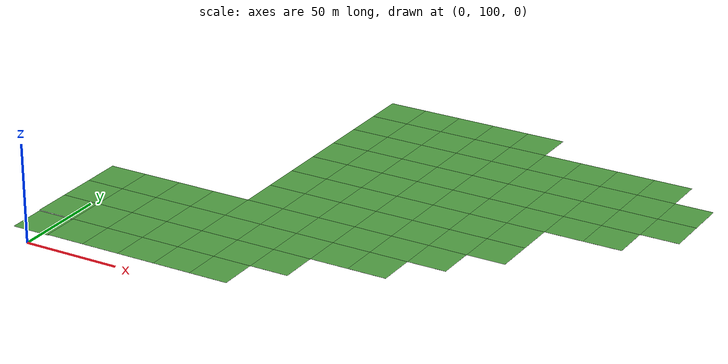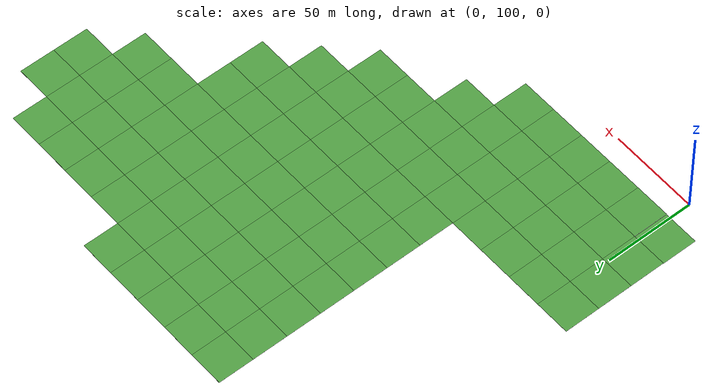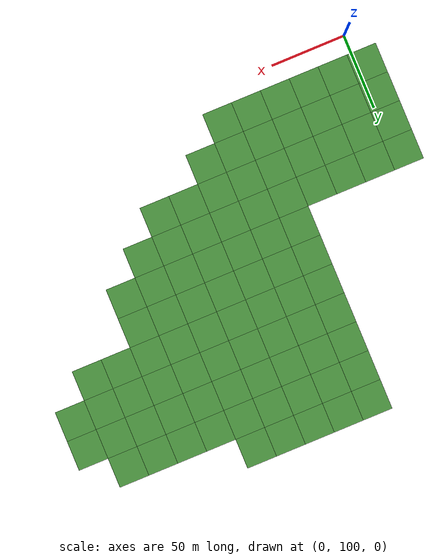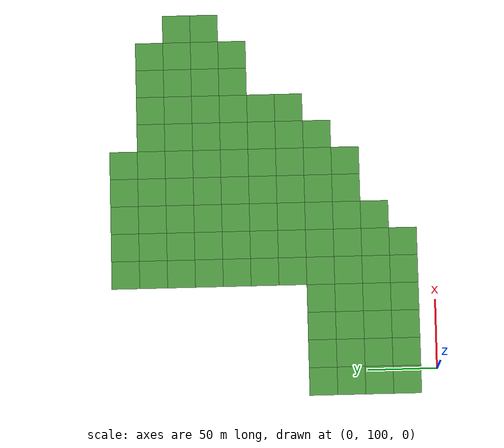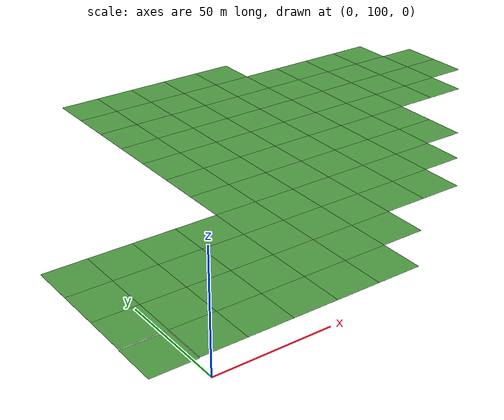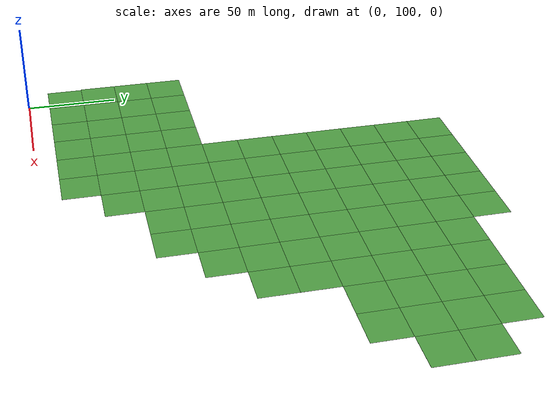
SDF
<sdf version="1.6">
 <world name="default">
  <model name="grass_plane_3">
   <static>1</static>
   <link name="link">
    <collision name="collision">
     <geometry><plane><normal>0 0 1</normal><size>500 500</size></plane></geometry>
     <surface><friction><ode><mu>0.5</mu><mu2>0.5</mu2></ode></friction></surface>
    </collision>
    <visual name="visual_0">
     <pose>-40 -40 0 0 -0 0</pose>
     <cast_shadows>0</cast_shadows>
     <geometry><plane><normal>0 0 1</normal><size>20 20</size></plane></geometry>
     <material>
      <script>
       <uri>model://grass_plane/materials/scripts</uri>
       <uri>model://grass_plane/materials/textures</uri>
       <name>vrc/grass</name>
      </script>
     </material>
    </visual>
    <visual name="visual_1">
     <pose>-20 -40 0 0 -0 0</pose>
     <cast_shadows>0</cast_shadows>
     <geometry><plane><normal>0 0 1</normal><size>20 20</size></plane></geometry>
     <material>
      <script>
       <uri>model://grass_plane/materials/scripts</uri>
       <uri>model://grass_plane/materials/textures</uri>
       <name>vrc/grass</name>
      </script>
     </material>
    </visual>
    <visual name="visual_2">
     <pose>0 -40 0 0 -0 0</pose>
     <cast_shadows>0</cast_shadows>
     <geometry><plane><normal>0 0 1</normal><size>20 20</size></plane></geometry>
     <material>
      <script>
       <uri>model://grass_plane/materials/scripts</uri>
       <uri>model://grass_plane/materials/textures</uri>
       <name>vrc/grass</name>
      </script>
     </material>
    </visual>
    <visual name="visual_3">
     <pose>20 -40 0 0 -0 0</pose>
     <cast_shadows>0</cast_shadows>
     <geometry><plane><normal>0 0 1</normal><size>20 20</size></plane></geometry>
     <material>
      <script>
       <uri>model://grass_plane/materials/scripts</uri>
       <uri>model://grass_plane/materials/textures</uri>
       <name>vrc/grass</name>
      </script>
     </material>
    </visual>
    <visual name="visual_4">
     <pose>40 -40 0 0 -0 0</pose>
     <cast_shadows>0</cast_shadows>
     <geometry><plane><normal>0 0 1</normal><size>20 20</size></plane></geometry>
     <material>
      <script>
       <uri>model://grass_plane/materials/scripts</uri>
       <uri>model://grass_plane/materials/textures</uri>
       <name>vrc/grass</name>
      </script>
     </material>
    </visual>
    <visual name="visual_5">
     <pose>60 -40 0 0 -0 0</pose>
     <cast_shadows>0</cast_shadows>
     <geometry><plane><normal>0 0 1</normal><size>20 20</size></plane></geometry>
     <material>
      <script>
       <uri>model://grass_plane/materials/scripts</uri>
       <uri>model://grass_plane/materials/textures</uri>
       <name>vrc/grass</name>
      </script>
     </material>
    </visual>
    <visual name="visual_6">
     <pose>-40 -20 0 0 -0 0</pose>
     <cast_shadows>0</cast_shadows>
     <geometry><plane><normal>0 0 1</normal><size>20 20</size></plane></geometry>
     <material>
      <script>
       <uri>model://grass_plane/materials/scripts</uri>
       <uri>model://grass_plane/materials/textures</uri>
       <name>vrc/grass</name>
      </script>
     </material>
    </visual>
    <visual name="visual_7">
     <pose>-20 -20 0 0 -0 0</pose>
     <cast_shadows>0</cast_shadows>
     <geometry><plane><normal>0 0 1</normal><size>20 20</size></plane></geometry>
     <material>
      <script>
       <uri>model://grass_plane/materials/scripts</uri>
       <uri>model://grass_plane/materials/textures</uri>
       <name>vrc/grass</name>
      </script>
     </material>
    </visual>
    <visual name="visual_8">
     <pose>0 -20 0 0 -0 0</pose>
     <cast_shadows>0</cast_shadows>
     <geometry><plane><normal>0 0 1</normal><size>20 20</size></plane></geometry>
     <material>
      <script>
       <uri>model://grass_plane/materials/scripts</uri>
       <uri>model://grass_plane/materials/textures</uri>
       <name>vrc/grass</name>
      </script>
     </material>
    </visual>
    <visual name="visual_9">
     <pose>20 -20 0 0 -0 0</pose>
     <cast_shadows>0</cast_shadows>
     <geometry><plane><normal>0 0 1</normal><size>20 20</size></plane></geometry>
     <material>
      <script>
       <uri>model://grass_plane/materials/scripts</uri>
       <uri>model://grass_plane/materials/textures</uri>
       <name>vrc/grass</name>
      </script>
     </material>
    </visual>
    <visual name="visual_10">
     <pose>40 -20 0 0 -0 0</pose>
     <cast_shadows>0</cast_shadows>
     <geometry><plane><normal>0 0 1</normal><size>20 20</size></plane></geometry>
     <material>
      <script>
       <uri>model://grass_plane/materials/scripts</uri>
       <uri>model://grass_plane/materials/textures</uri>
       <name>vrc/grass</name>
      </script>
     </material>
    </visual>
    <visual name="visual_11">
     <pose>60 -20 0 0 -0 0</pose>
     <cast_shadows>0</cast_shadows>
     <geometry><plane><normal>0 0 1</normal><size>20 20</size></plane></geometry>
     <material>
      <script>
       <uri>model://grass_plane/materials/scripts</uri>
       <uri>model://grass_plane/materials/textures</uri>
       <name>vrc/grass</name>
      </script>
     </material>
    </visual>
    <visual name="visual_12">
     <pose>80 -20 0 0 -0 0</pose>
     <cast_shadows>0</cast_shadows>
     <geometry><plane><normal>0 0 1</normal><size>20 20</size></plane></geometry>
     <material>
      <script>
       <uri>model://grass_plane/materials/scripts</uri>
       <uri>model://grass_plane/materials/textures</uri>
       <name>vrc/grass</name>
      </script>
     </material>
    </visual>
    <visual name="visual_13">
     <pose>-40 0 0 0 -0 0</pose>
     <cast_shadows>0</cast_shadows>
     <geometry><plane><normal>0 0 1</normal><size>20 20</size></plane></geometry>
     <material>
      <script>
       <uri>model://grass_plane/materials/scripts</uri>
       <uri>model://grass_plane/materials/textures</uri>
       <name>vrc/grass</name>
      </script>
     </material>
    </visual>
    <visual name="visual_14">
     <pose>-20 0 0 0 -0 0</pose>
     <cast_shadows>0</cast_shadows>
     <geometry><plane><normal>0 0 1</normal><size>20 20</size></plane></geometry>
     <material>
      <script>
       <uri>model://grass_plane/materials/scripts</uri>
       <uri>model://grass_plane/materials/textures</uri>
       <name>vrc/grass</name>
      </script>
     </material>
    </visual>
    <visual name="visual_15">
     <cast_shadows>0</cast_shadows>
     <geometry><plane><normal>0 0 1</normal><size>20 20</size></plane></geometry>
     <material>
      <script>
       <uri>model://grass_plane/materials/scripts</uri>
       <uri>model://grass_plane/materials/textures</uri>
       <name>vrc/grass</name>
      </script>
     </material>
    </visual>
    <visual name="visual_16">
     <pose>20 0 0 0 -0 0</pose>
     <cast_shadows>0</cast_shadows>
     <geometry><plane><normal>0 0 1</normal><size>20 20</size></plane></geometry>
     <material>
      <script>
       <uri>model://grass_plane/materials/scripts</uri>
       <uri>model://grass_plane/materials/textures</uri>
       <name>vrc/grass</name>
      </script>
     </material>
    </visual>
    <visual name="visual_17">
     <pose>40 0 0 0 -0 0</pose>
     <cast_shadows>0</cast_shadows>
     <geometry><plane><normal>0 0 1</normal><size>20 20</size></plane></geometry>
     <material>
      <script>
       <uri>model://grass_plane/materials/scripts</uri>
       <uri>model://grass_plane/materials/textures</uri>
       <name>vrc/grass</name>
      </script>
     </material>
    </visual>
    <visual name="visual_18">
     <pose>60 0 0 0 -0 0</pose>
     <cast_shadows>0</cast_shadows>
     <geometry><plane><normal>0 0 1</normal><size>20 20</size></plane></geometry>
     <material>
      <script>
       <uri>model://grass_plane/materials/scripts</uri>
       <uri>model://grass_plane/materials/textures</uri>
       <name>vrc/grass</name>
      </script>
     </material>
    </visual>
    <visual name="visual_19">
     <pose>80 0 0 0 -0 0</pose>
     <cast_shadows>0</cast_shadows>
     <geometry><plane><normal>0 0 1</normal><size>20 20</size></plane></geometry>
     <material>
      <script>
       <uri>model://grass_plane/materials/scripts</uri>
       <uri>model://grass_plane/materials/textures</uri>
       <name>vrc/grass</name>
      </script>
     </material>
    </visual>
    <visual name="visual_20">
     <pose>100 0 0 0 -0 0</pose>
     <cast_shadows>0</cast_shadows>
     <geometry><plane><normal>0 0 1</normal><size>20 20</size></plane></geometry>
     <material>
      <script>
       <uri>model://grass_plane/materials/scripts</uri>
       <uri>model://grass_plane/materials/textures</uri>
       <name>vrc/grass</name>
      </script>
     </material>
    </visual>
    <visual name="visual_21">
     <pose>120 0 0 0 -0 0</pose>
     <cast_shadows>0</cast_shadows>
     <geometry><plane><normal>0 0 1</normal><size>20 20</size></plane></geometry>
     <material>
      <script>
       <uri>model://grass_plane/materials/scripts</uri>
       <uri>model://grass_plane/materials/textures</uri>
       <name>vrc/grass</name>
      </script>
     </material>
    </visual>
    <visual name="visual_22">
     <pose>-40 20 0 0 -0 0</pose>
     <cast_shadows>0</cast_shadows>
     <geometry><plane><normal>0 0 1</normal><size>20 20</size></plane></geometry>
     <material>
      <script>
       <uri>model://grass_plane/materials/scripts</uri>
       <uri>model://grass_plane/materials/textures</uri>
       <name>vrc/grass</name>
      </script>
     </material>
    </visual>
    <visual name="visual_23">
     <pose>-20 20 0 0 -0 0</pose>
     <cast_shadows>0</cast_shadows>
     <geometry><plane><normal>0 0 1</normal><size>20 20</size></plane></geometry>
     <material>
      <script>
       <uri>model://grass_plane/materials/scripts</uri>
       <uri>model://grass_plane/materials/textures</uri>
       <name>vrc/grass</name>
      </script>
     </material>
    </visual>
    <visual name="visual_24">
     <pose>0 20 0 0 -0 0</pose>
     <cast_shadows>0</cast_shadows>
     <geometry><plane><normal>0 0 1</normal><size>20 20</size></plane></geometry>
     <material>
      <script>
       <uri>model://grass_plane/materials/scripts</uri>
       <uri>model://grass_plane/materials/textures</uri>
       <name>vrc/grass</name>
      </script>
     </material>
    </visual>
    <visual name="visual_25">
     <pose>20 20 0 0 -0 0</pose>
     <cast_shadows>0</cast_shadows>
     <geometry><plane><normal>0 0 1</normal><size>20 20</size></plane></geometry>
     <material>
      <script>
       <uri>model://grass_plane/materials/scripts</uri>
       <uri>model://grass_plane/materials/textures</uri>
       <name>vrc/grass</name>
      </script>
     </material>
    </visual>
    <visual name="visual_26">
     <pose>40 20 0 0 -0 0</pose>
     <cast_shadows>0</cast_shadows>
     <geometry><plane><normal>0 0 1</normal><size>20 20</size></plane></geometry>
     <material>
      <script>
       <uri>model://grass_plane/materials/scripts</uri>
       <uri>model://grass_plane/materials/textures</uri>
       <name>vrc/grass</name>
      </script>
     </material>
    </visual>
    <visual name="visual_27">
     <pose>60 20 0 0 -0 0</pose>
     <cast_shadows>0</cast_shadows>
     <geometry><plane><normal>0 0 1</normal><size>20 20</size></plane></geometry>
     <material>
      <script>
       <uri>model://grass_plane/materials/scripts</uri>
       <uri>model://grass_plane/materials/textures</uri>
       <name>vrc/grass</name>
      </script>
     </material>
    </visual>
    <visual name="visual_28">
     <pose>80 20 0 0 -0 0</pose>
     <cast_shadows>0</cast_shadows>
     <geometry><plane><normal>0 0 1</normal><size>20 20</size></plane></geometry>
     <material>
      <script>
       <uri>model://grass_plane/materials/scripts</uri>
       <uri>model://grass_plane/materials/textures</uri>
       <name>vrc/grass</name>
      </script>
     </material>
    </visual>
    <visual name="visual_29">
     <pose>100 20 0 0 -0 0</pose>
     <cast_shadows>0</cast_shadows>
     <geometry><plane><normal>0 0 1</normal><size>20 20</size></plane></geometry>
     <material>
      <script>
       <uri>model://grass_plane/materials/scripts</uri>
       <uri>model://grass_plane/materials/textures</uri>
       <name>vrc/grass</name>
      </script>
     </material>
    </visual>
    <visual name="visual_30">
     <pose>120 20 0 0 -0 0</pose>
     <cast_shadows>0</cast_shadows>
     <geometry><plane><normal>0 0 1</normal><size>20 20</size></plane></geometry>
     <material>
      <script>
       <uri>model://grass_plane/materials/scripts</uri>
       <uri>model://grass_plane/materials/textures</uri>
       <name>vrc/grass</name>
      </script>
     </material>
    </visual>
    <visual name="visual_31">
     <pose>140 20 0 0 -0 0</pose>
     <cast_shadows>0</cast_shadows>
     <geometry><plane><normal>0 0 1</normal><size>20 20</size></plane></geometry>
     <material>
      <script>
       <uri>model://grass_plane/materials/scripts</uri>
       <uri>model://grass_plane/materials/textures</uri>
       <name>vrc/grass</name>
      </script>
     </material>
    </visual>
    <visual name="visual_32">
     <pose>40 40 0 0 -0 0</pose>
     <cast_shadows>0</cast_shadows>
     <geometry><plane><normal>0 0 1</normal><size>20 20</size></plane></geometry>
     <material>
      <script>
       <uri>model://grass_plane/materials/scripts</uri>
       <uri>model://grass_plane/materials/textures</uri>
       <name>vrc/grass</name>
      </script>
     </material>
    </visual>
    <visual name="visual_33">
     <pose>60 40 0 0 -0 0</pose>
     <cast_shadows>0</cast_shadows>
     <geometry><plane><normal>0 0 1</normal><size>20 20</size></plane></geometry>
     <material>
      <script>
       <uri>model://grass_plane/materials/scripts</uri>
       <uri>model://grass_plane/materials/textures</uri>
       <name>vrc/grass</name>
      </script>
     </material>
    </visual>
    <visual name="visual_34">
     <pose>80 40 0 0 -0 0</pose>
     <cast_shadows>0</cast_shadows>
     <geometry><plane><normal>0 0 1</normal><size>20 20</size></plane></geometry>
     <material>
      <script>
       <uri>model://grass_plane/materials/scripts</uri>
       <uri>model://grass_plane/materials/textures</uri>
       <name>vrc/grass</name>
      </script>
     </material>
    </visual>
    <visual name="visual_35">
     <pose>100 40 0 0 -0 0</pose>
     <cast_shadows>0</cast_shadows>
     <geometry><plane><normal>0 0 1</normal><size>20 20</size></plane></geometry>
     <material>
      <script>
       <uri>model://grass_plane/materials/scripts</uri>
       <uri>model://grass_plane/materials/textures</uri>
       <name>vrc/grass</name>
      </script>
     </material>
    </visual>
    <visual name="visual_36">
     <pose>120 40 0 0 -0 0</pose>
     <cast_shadows>0</cast_shadows>
     <geometry><plane><normal>0 0 1</normal><size>20 20</size></plane></geometry>
     <material>
      <script>
       <uri>model://grass_plane/materials/scripts</uri>
       <uri>model://grass_plane/materials/textures</uri>
       <name>vrc/grass</name>
      </script>
     </material>
    </visual>
    <visual name="visual_37">
     <pose>140 40 0 0 -0 0</pose>
     <cast_shadows>0</cast_shadows>
     <geometry><plane><normal>0 0 1</normal><size>20 20</size></plane></geometry>
     <material>
      <script>
       <uri>model://grass_plane/materials/scripts</uri>
       <uri>model://grass_plane/materials/textures</uri>
       <name>vrc/grass</name>
      </script>
     </material>
    </visual>
    <visual name="visual_38">
     <pose>160 40 0 0 -0 0</pose>
     <cast_shadows>0</cast_shadows>
     <geometry><plane><normal>0 0 1</normal><size>20 20</size></plane></geometry>
     <material>
      <script>
       <uri>model://grass_plane/materials/scripts</uri>
       <uri>model://grass_plane/materials/textures</uri>
       <name>vrc/grass</name>
      </script>
     </material>
    </visual>
    <visual name="visual_39">
     <pose>40 60 0 0 -0 0</pose>
     <cast_shadows>0</cast_shadows>
     <geometry><plane><normal>0 0 1</normal><size>20 20</size></plane></geometry>
     <material>
      <script>
       <uri>model://grass_plane/materials/scripts</uri>
       <uri>model://grass_plane/materials/textures</uri>
       <name>vrc/grass</name>
      </script>
     </material>
    </visual>
    <visual name="visual_40">
     <pose>60 60 0 0 -0 0</pose>
     <cast_shadows>0</cast_shadows>
     <geometry><plane><normal>0 0 1</normal><size>20 20</size></plane></geometry>
     <material>
      <script>
       <uri>model://grass_plane/materials/scripts</uri>
       <uri>model://grass_plane/materials/textures</uri>
       <name>vrc/grass</name>
      </script>
     </material>
    </visual>
    <visual name="visual_41">
     <pose>80 60 0 0 -0 0</pose>
     <cast_shadows>0</cast_shadows>
     <geometry><plane><normal>0 0 1</normal><size>20 20</size></plane></geometry>
     <material>
      <script>
       <uri>model://grass_plane/materials/scripts</uri>
       <uri>model://grass_plane/materials/textures</uri>
       <name>vrc/grass</name>
      </script>
     </material>
    </visual>
    <visual name="visual_42">
     <pose>100 60 0 0 -0 0</pose>
     <cast_shadows>0</cast_shadows>
     <geometry><plane><normal>0 0 1</normal><size>20 20</size></plane></geometry>
     <material>
      <script>
       <uri>model://grass_plane/materials/scripts</uri>
       <uri>model://grass_plane/materials/textures</uri>
       <name>vrc/grass</name>
      </script>
     </material>
    </visual>
    <visual name="visual_43">
     <pose>120 60 0 0 -0 0</pose>
     <cast_shadows>0</cast_shadows>
     <geometry><plane><normal>0 0 1</normal><size>20 20</size></plane></geometry>
     <material>
      <script>
       <uri>model://grass_plane/materials/scripts</uri>
       <uri>model://grass_plane/materials/textures</uri>
       <name>vrc/grass</name>
      </script>
     </material>
    </visual>
    <visual name="visual_44">
     <pose>140 60 0 0 -0 0</pose>
     <cast_shadows>0</cast_shadows>
     <geometry><plane><normal>0 0 1</normal><size>20 20</size></plane></geometry>
     <material>
      <script>
       <uri>model://grass_plane/materials/scripts</uri>
       <uri>model://grass_plane/materials/textures</uri>
       <name>vrc/grass</name>
      </script>
     </material>
    </visual>
    <visual name="visual_45">
     <pose>160 60 0 0 -0 0</pose>
     <cast_shadows>0</cast_shadows>
     <geometry><plane><normal>0 0 1</normal><size>20 20</size></plane></geometry>
     <material>
      <script>
       <uri>model://grass_plane/materials/scripts</uri>
       <uri>model://grass_plane/materials/textures</uri>
       <name>vrc/grass</name>
      </script>
     </material>
    </visual>
    <visual name="visual_46">
     <pose>40 80 0 0 -0 0</pose>
     <cast_shadows>0</cast_shadows>
     <geometry><plane><normal>0 0 1</normal><size>20 20</size></plane></geometry>
     <material>
      <script>
       <uri>model://grass_plane/materials/scripts</uri>
       <uri>model://grass_plane/materials/textures</uri>
       <name>vrc/grass</name>
      </script>
     </material>
    </visual>
    <visual name="visual_47">
     <pose>60 80 0 0 -0 0</pose>
     <cast_shadows>0</cast_shadows>
     <geometry><plane><normal>0 0 1</normal><size>20 20</size></plane></geometry>
     <material>
      <script>
       <uri>model://grass_plane/materials/scripts</uri>
       <uri>model://grass_plane/materials/textures</uri>
       <name>vrc/grass</name>
      </script>
     </material>
    </visual>
    <visual name="visual_48">
     <pose>80 80 0 0 -0 0</pose>
     <cast_shadows>0</cast_shadows>
     <geometry><plane><normal>0 0 1</normal><size>20 20</size></plane></geometry>
     <material>
      <script>
       <uri>model://grass_plane/materials/scripts</uri>
       <uri>model://grass_plane/materials/textures</uri>
       <name>vrc/grass</name>
      </script>
     </material>
    </visual>
    <visual name="visual_49">
     <pose>100 80 0 0 -0 0</pose>
     <cast_shadows>0</cast_shadows>
     <geometry><plane><normal>0 0 1</normal><size>20 20</size></plane></geometry>
     <material>
      <script>
       <uri>model://grass_plane/materials/scripts</uri>
       <uri>model://grass_plane/materials/textures</uri>
       <name>vrc/grass</name>
      </script>
     </material>
    </visual>
    <visual name="visual_50">
     <pose>120 80 0 0 -0 0</pose>
     <cast_shadows>0</cast_shadows>
     <geometry><plane><normal>0 0 1</normal><size>20 20</size></plane></geometry>
     <material>
      <script>
       <uri>model://grass_plane/materials/scripts</uri>
       <uri>model://grass_plane/materials/textures</uri>
       <name>vrc/grass</name>
      </script>
     </material>
    </visual>
    <visual name="visual_51">
     <pose>140 80 0 0 -0 0</pose>
     <cast_shadows>0</cast_shadows>
     <geometry><plane><normal>0 0 1</normal><size>20 20</size></plane></geometry>
     <material>
      <script>
       <uri>model://grass_plane/materials/scripts</uri>
       <uri>model://grass_plane/materials/textures</uri>
       <name>vrc/grass</name>
      </script>
     </material>
    </visual>
    <visual name="visual_52">
     <pose>160 80 0 0 -0 0</pose>
     <cast_shadows>0</cast_shadows>
     <geometry><plane><normal>0 0 1</normal><size>20 20</size></plane></geometry>
     <material>
      <script>
       <uri>model://grass_plane/materials/scripts</uri>
       <uri>model://grass_plane/materials/textures</uri>
       <name>vrc/grass</name>
      </script>
     </material>
    </visual>
    <visual name="visual_53">
     <pose>180 80 0 0 -0 0</pose>
     <cast_shadows>0</cast_shadows>
     <geometry><plane><normal>0 0 1</normal><size>20 20</size></plane></geometry>
     <material>
      <script>
       <uri>model://grass_plane/materials/scripts</uri>
       <uri>model://grass_plane/materials/textures</uri>
       <name>vrc/grass</name>
      </script>
     </material>
    </visual>
    <visual name="visual_54">
     <pose>200 80 0 0 -0 0</pose>
     <cast_shadows>0</cast_shadows>
     <geometry><plane><normal>0 0 1</normal><size>20 20</size></plane></geometry>
     <material>
      <script>
       <uri>model://grass_plane/materials/scripts</uri>
       <uri>model://grass_plane/materials/textures</uri>
       <name>vrc/grass</name>
      </script>
     </material>
    </visual>
    <visual name="visual_55">
     <pose>40 100 0 0 -0 0</pose>
     <cast_shadows>0</cast_shadows>
     <geometry><plane><normal>0 0 1</normal><size>20 20</size></plane></geometry>
     <material>
      <script>
       <uri>model://grass_plane/materials/scripts</uri>
       <uri>model://grass_plane/materials/textures</uri>
       <name>vrc/grass</name>
      </script>
     </material>
    </visual>
    <visual name="visual_56">
     <pose>60 100 0 0 -0 0</pose>
     <cast_shadows>0</cast_shadows>
     <geometry><plane><normal>0 0 1</normal><size>20 20</size></plane></geometry>
     <material>
      <script>
       <uri>model://grass_plane/materials/scripts</uri>
       <uri>model://grass_plane/materials/textures</uri>
       <name>vrc/grass</name>
      </script>
     </material>
    </visual>
    <visual name="visual_57">
     <pose>80 100 0 0 -0 0</pose>
     <cast_shadows>0</cast_shadows>
     <geometry><plane><normal>0 0 1</normal><size>20 20</size></plane></geometry>
     <material>
      <script>
       <uri>model://grass_plane/materials/scripts</uri>
       <uri>model://grass_plane/materials/textures</uri>
       <name>vrc/grass</name>
      </script>
     </material>
    </visual>
    <visual name="visual_58">
     <pose>100 100 0 0 -0 0</pose>
     <cast_shadows>0</cast_shadows>
     <geometry><plane><normal>0 0 1</normal><size>20 20</size></plane></geometry>
     <material>
      <script>
       <uri>model://grass_plane/materials/scripts</uri>
       <uri>model://grass_plane/materials/textures</uri>
       <name>vrc/grass</name>
      </script>
     </material>
    </visual>
    <visual name="visual_59">
     <pose>120 100 0 0 -0 0</pose>
     <cast_shadows>0</cast_shadows>
     <geometry><plane><normal>0 0 1</normal><size>20 20</size></plane></geometry>
     <material>
      <script>
       <uri>model://grass_plane/materials/scripts</uri>
       <uri>model://grass_plane/materials/textures</uri>
       <name>vrc/grass</name>
      </script>
     </material>
    </visual>
    <visual name="visual_60">
     <pose>140 100 0 0 -0 0</pose>
     <cast_shadows>0</cast_shadows>
     <geometry><plane><normal>0 0 1</normal><size>20 20</size></plane></geometry>
     <material>
      <script>
       <uri>model://grass_plane/materials/scripts</uri>
       <uri>model://grass_plane/materials/textures</uri>
       <name>vrc/grass</name>
      </script>
     </material>
    </visual>
    <visual name="visual_61">
     <pose>160 100 0 0 -0 0</pose>
     <cast_shadows>0</cast_shadows>
     <geometry><plane><normal>0 0 1</normal><size>20 20</size></plane></geometry>
     <material>
      <script>
       <uri>model://grass_plane/materials/scripts</uri>
       <uri>model://grass_plane/materials/textures</uri>
       <name>vrc/grass</name>
      </script>
     </material>
    </visual>
    <visual name="visual_62">
     <pose>180 100 0 0 -0 0</pose>
     <cast_shadows>0</cast_shadows>
     <geometry><plane><normal>0 0 1</normal><size>20 20</size></plane></geometry>
     <material>
      <script>
       <uri>model://grass_plane/materials/scripts</uri>
       <uri>model://grass_plane/materials/textures</uri>
       <name>vrc/grass</name>
      </script>
     </material>
    </visual>
    <visual name="visual_63">
     <pose>200 100 0 0 -0 0</pose>
     <cast_shadows>0</cast_shadows>
     <geometry><plane><normal>0 0 1</normal><size>20 20</size></plane></geometry>
     <material>
      <script>
       <uri>model://grass_plane/materials/scripts</uri>
       <uri>model://grass_plane/materials/textures</uri>
       <name>vrc/grass</name>
      </script>
     </material>
    </visual>
    <visual name="visual_63a">
     <pose>220 100 0 0 -0 0</pose>
     <cast_shadows>0</cast_shadows>
     <geometry><plane><normal>0 0 1</normal><size>20 20</size></plane></geometry>
     <material>
      <script>
       <uri>model://grass_plane/materials/scripts</uri>
       <uri>model://grass_plane/materials/textures</uri>
       <name>vrc/grass</name>
      </script>
     </material>
    </visual>
    <visual name="visual_64">
     <pose>40 120 0 0 -0 0</pose>
     <cast_shadows>0</cast_shadows>
     <geometry><plane><normal>0 0 1</normal><size>20 20</size></plane></geometry>
     <material>
      <script>
       <uri>model://grass_plane/materials/scripts</uri>
       <uri>model://grass_plane/materials/textures</uri>
       <name>vrc/grass</name>
      </script>
     </material>
    </visual>
    <visual name="visual_65">
     <pose>60 120 0 0 -0 0</pose>
     <cast_shadows>0</cast_shadows>
     <geometry><plane><normal>0 0 1</normal><size>20 20</size></plane></geometry>
     <material>
      <script>
       <uri>model://grass_plane/materials/scripts</uri>
       <uri>model://grass_plane/materials/textures</uri>
       <name>vrc/grass</name>
      </script>
     </material>
    </visual>
    <visual name="visual_66">
     <pose>80 120 0 0 -0 0</pose>
     <cast_shadows>0</cast_shadows>
     <geometry><plane><normal>0 0 1</normal><size>20 20</size></plane></geometry>
     <material>
      <script>
       <uri>model://grass_plane/materials/scripts</uri>
       <uri>model://grass_plane/materials/textures</uri>
       <name>vrc/grass</name>
      </script>
     </material>
    </visual>
    <visual name="visual_67">
     <pose>100 120 0 0 -0 0</pose>
     <cast_shadows>0</cast_shadows>
     <geometry><plane><normal>0 0 1</normal><size>20 20</size></plane></geometry>
     <material>
      <script>
       <uri>model://grass_plane/materials/scripts</uri>
       <uri>model://grass_plane/materials/textures</uri>
       <name>vrc/grass</name>
      </script>
     </material>
    </visual>
    <visual name="visual_68">
     <pose>120 120 0 0 -0 0</pose>
     <cast_shadows>0</cast_shadows>
     <geometry><plane><normal>0 0 1</normal><size>20 20</size></plane></geometry>
     <material>
      <script>
       <uri>model://grass_plane/materials/scripts</uri>
       <uri>model://grass_plane/materials/textures</uri>
       <name>vrc/grass</name>
      </script>
     </material>
    </visual>
    <visual name="visual_69">
     <pose>140 120 0 0 -0 0</pose>
     <cast_shadows>0</cast_shadows>
     <geometry><plane><normal>0 0 1</normal><size>20 20</size></plane></geometry>
     <material>
      <script>
       <uri>model://grass_plane/materials/scripts</uri>
       <uri>model://grass_plane/materials/textures</uri>
       <name>vrc/grass</name>
      </script>
     </material>
    </visual>
    <visual name="visual_70">
     <pose>160 120 0 0 -0 0</pose>
     <cast_shadows>0</cast_shadows>
     <geometry><plane><normal>0 0 1</normal><size>20 20</size></plane></geometry>
     <material>
      <script>
       <uri>model://grass_plane/materials/scripts</uri>
       <uri>model://grass_plane/materials/textures</uri>
       <name>vrc/grass</name>
      </script>
     </material>
    </visual>
    <visual name="visual_71">
     <pose>180 120 0 0 -0 0</pose>
     <cast_shadows>0</cast_shadows>
     <geometry><plane><normal>0 0 1</normal><size>20 20</size></plane></geometry>
     <material>
      <script>
       <uri>model://grass_plane/materials/scripts</uri>
       <uri>model://grass_plane/materials/textures</uri>
       <name>vrc/grass</name>
      </script>
     </material>
    </visual>
    <visual name="visual_72">
     <pose>200 120 0 0 -0 0</pose>
     <cast_shadows>0</cast_shadows>
     <geometry><plane><normal>0 0 1</normal><size>20 20</size></plane></geometry>
     <material>
      <script>
       <uri>model://grass_plane/materials/scripts</uri>
       <uri>model://grass_plane/materials/textures</uri>
       <name>vrc/grass</name>
      </script>
     </material>
    </visual>
    <visual name="visual_72a">
     <pose>220 120 0 0 -0 0</pose>
     <cast_shadows>0</cast_shadows>
     <geometry><plane><normal>0 0 1</normal><size>20 20</size></plane></geometry>
     <material>
      <script>
       <uri>model://grass_plane/materials/scripts</uri>
       <uri>model://grass_plane/materials/textures</uri>
       <name>vrc/grass</name>
      </script>
     </material>
    </visual>
    <visual name="visual_73">
     <pose>40 140 0 0 -0 0</pose>
     <cast_shadows>0</cast_shadows>
     <geometry><plane><normal>0 0 1</normal><size>20 20</size></plane></geometry>
     <material>
      <script>
       <uri>model://grass_plane/materials/scripts</uri>
       <uri>model://grass_plane/materials/textures</uri>
       <name>vrc/grass</name>
      </script>
     </material>
    </visual>
    <visual name="visual_74">
     <pose>60 140 0 0 -0 0</pose>
     <cast_shadows>0</cast_shadows>
     <geometry><plane><normal>0 0 1</normal><size>20 20</size></plane></geometry>
     <material>
      <script>
       <uri>model://grass_plane/materials/scripts</uri>
       <uri>model://grass_plane/materials/textures</uri>
       <name>vrc/grass</name>
      </script>
     </material>
    </visual>
    <visual name="visual_75">
     <pose>80 140 0 0 -0 0</pose>
     <cast_shadows>0</cast_shadows>
     <geometry><plane><normal>0 0 1</normal><size>20 20</size></plane></geometry>
     <material>
      <script>
       <uri>model://grass_plane/materials/scripts</uri>
       <uri>model://grass_plane/materials/textures</uri>
       <name>vrc/grass</name>
      </script>
     </material>
    </visual>
    <visual name="visual_76">
     <pose>100 140 0 0 -0 0</pose>
     <cast_shadows>0</cast_shadows>
     <geometry><plane><normal>0 0 1</normal><size>20 20</size></plane></geometry>
     <material>
      <script>
       <uri>model://grass_plane/materials/scripts</uri>
       <uri>model://grass_plane/materials/textures</uri>
       <name>vrc/grass</name>
      </script>
     </material>
    </visual>
    <visual name="visual_77">
     <pose>120 140 0 0 -0 0</pose>
     <cast_shadows>0</cast_shadows>
     <geometry><plane><normal>0 0 1</normal><size>20 20</size></plane></geometry>
     <material>
      <script>
       <uri>model://grass_plane/materials/scripts</uri>
       <uri>model://grass_plane/materials/textures</uri>
       <name>vrc/grass</name>
      </script>
     </material>
    </visual>
    <visual name="visual_78">
     <pose>140 140 0 0 -0 0</pose>
     <cast_shadows>0</cast_shadows>
     <geometry><plane><normal>0 0 1</normal><size>20 20</size></plane></geometry>
     <material>
      <script>
       <uri>model://grass_plane/materials/scripts</uri>
       <uri>model://grass_plane/materials/textures</uri>
       <name>vrc/grass</name>
      </script>
     </material>
    </visual>
    <visual name="visual_79">
     <pose>160 140 0 0 -0 0</pose>
     <cast_shadows>0</cast_shadows>
     <geometry><plane><normal>0 0 1</normal><size>20 20</size></plane></geometry>
     <material>
      <script>
       <uri>model://grass_plane/materials/scripts</uri>
       <uri>model://grass_plane/materials/textures</uri>
       <name>vrc/grass</name>
      </script>
     </material>
    </visual>
    <visual name="visual_80">
     <pose>180 140 0 0 -0 0</pose>
     <cast_shadows>0</cast_shadows>
     <geometry><plane><normal>0 0 1</normal><size>20 20</size></plane></geometry>
     <material>
      <script>
       <uri>model://grass_plane/materials/scripts</uri>
       <uri>model://grass_plane/materials/textures</uri>
       <name>vrc/grass</name>
      </script>
     </material>
    </visual>
    <visual name="visual_81">
     <pose>200 140 0 0 -0 0</pose>
     <cast_shadows>0</cast_shadows>
     <geometry><plane><normal>0 0 1</normal><size>20 20</size></plane></geometry>
     <material>
      <script>
       <uri>model://grass_plane/materials/scripts</uri>
       <uri>model://grass_plane/materials/textures</uri>
       <name>vrc/grass</name>
      </script>
     </material>
    </visual>
    <visual name="visual_82">
     <pose>40 160 0 0 -0 0</pose>
     <cast_shadows>0</cast_shadows>
     <geometry><plane><normal>0 0 1</normal><size>20 20</size></plane></geometry>
     <material>
      <script>
       <uri>model://grass_plane/materials/scripts</uri>
       <uri>model://grass_plane/materials/textures</uri>
       <name>vrc/grass</name>
      </script>
     </material>
    </visual>
    <visual name="visual_83">
     <pose>60 160 0 0 -0 0</pose>
     <cast_shadows>0</cast_shadows>
     <geometry><plane><normal>0 0 1</normal><size>20 20</size></plane></geometry>
     <material>
      <script>
       <uri>model://grass_plane/materials/scripts</uri>
       <uri>model://grass_plane/materials/textures</uri>
       <name>vrc/grass</name>
      </script>
     </material>
    </visual>
    <visual name="visual_84">
     <pose>80 160 0 0 -0 0</pose>
     <cast_shadows>0</cast_shadows>
     <geometry><plane><normal>0 0 1</normal><size>20 20</size></plane></geometry>
     <material>
      <script>
       <uri>model://grass_plane/materials/scripts</uri>
       <uri>model://grass_plane/materials/textures</uri>
       <name>vrc/grass</name>
      </script>
     </material>
    </visual>
    <visual name="visual_85">
     <pose>100 160 0 0 -0 0</pose>
     <cast_shadows>0</cast_shadows>
     <geometry><plane><normal>0 0 1</normal><size>20 20</size></plane></geometry>
     <material>
      <script>
       <uri>model://grass_plane/materials/scripts</uri>
       <uri>model://grass_plane/materials/textures</uri>
       <name>vrc/grass</name>
      </script>
     </material>
    </visual>
    <visual name="visual_86">
     <pose>120 160 0 0 -0 0</pose>
     <cast_shadows>0</cast_shadows>
     <geometry><plane><normal>0 0 1</normal><size>20 20</size></plane></geometry>
     <material>
      <script>
       <uri>model://grass_plane/materials/scripts</uri>
       <uri>model://grass_plane/materials/textures</uri>
       <name>vrc/grass</name>
      </script>
     </material>
    </visual>
   </link>
   <pose>32.8796 161.816 0 0 -0 0</pose>
  </model>
 </world>
</sdf>
